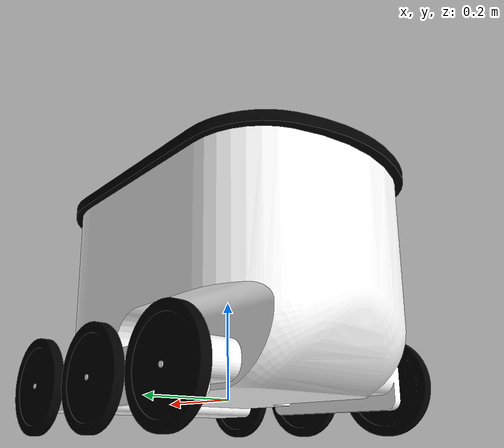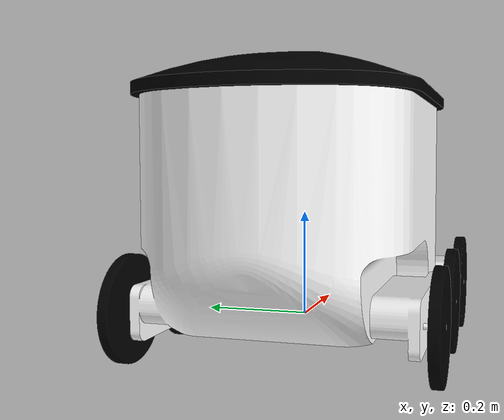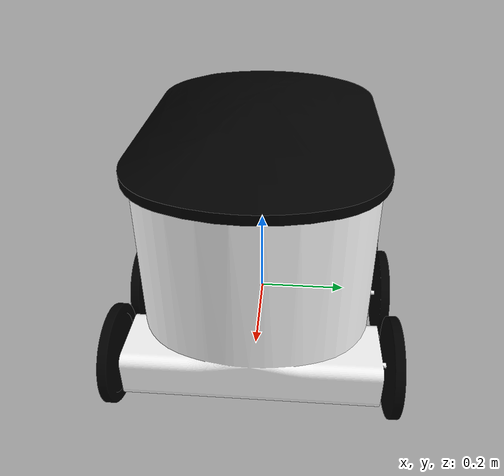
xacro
<?xml version="1.0"?>
<robot xmlns:xacro="http://www.ros.org/wiki/xacro" name="starship">

  <xacro:property name="track_width" value="0.56"/>
  <xacro:property name="wheel_z_offset" value="0.03"/>
  <xacro:property name="wheel_x_front" value="0.28"/>
  <xacro:property name="wheel_x_middle" value="0.05"/>
  <xacro:property name="wheel_x_rear" value="-0.18"/>

  <link name="base_link">
    <visual>
      <origin rpy="${pi/2} 0 ${pi}" xyz="0 0 0"/>
      <geometry>
        <mesh filename="package://starship_description/meshes/frame.STL" scale="0.001 0.001 0.001"/>
      </geometry>
      <material name="white">
        <color rgba="1 1 1 1" />
      </material>
    </visual>
    <collision>
      <geometry>
        <mesh filename="package://starship_description/meshes/frame.STL" scale="0.001 0.001 0.001"/>
      </geometry>
    </collision>
  </link>

  <link name="top">
    <visual>
      <origin rpy="1.57 0 ${pi}" xyz="0 0 0"/>
      <geometry>
        <mesh filename="package://starship_description/meshes/top.STL" scale="0.001 0.001 0.001"/>
      </geometry>
      <material name="black">
        <color rgba="0 0 0 1" />
      </material>
    </visual>
    <collision>
      <geometry>
        <mesh filename="package://starship_description/meshes/top.STL" scale="0.001 0.001 0.001"/>
      </geometry>
    </collision>
  </link>

  <xacro:macro name="wheel" params="wheel_name x reflect_y">
  <link name="${wheel_name}">
      <visual>
        <origin rpy="0 0 0" xyz="0 0 0"/>
        <geometry>
          <mesh filename="package://starship_description/meshes/wheel.STL" scale="0.001 0.001 0.001"/>
        </geometry>
        <material name="black">
          <color rgba="0 0 0 1" />
        </material>
      </visual>
      <collision>
        <geometry>
          <mesh filename="package://starship_description/meshes/wheel.STL" scale="0.001 0.001 0.001"/>
        </geometry>
      </collision>
    </link>

    <joint name="base_link_to_${wheel_name}" type="fixed">
      <parent link="base_link"/>
      <child link="${wheel_name}"/>
      <origin xyz="${x} ${track_width/2*reflect_y} ${wheel_z_offset}" rpy="-1.57 0 0"/>
    </joint>
  </xacro:macro>

  <xacro:wheel wheel_name="wheel_left_front" x="${wheel_x_front}" reflect_y="1"/>
  <xacro:wheel wheel_name="wheel_left_middle" x="${wheel_x_middle}" reflect_y="1"/>
  <xacro:wheel wheel_name="wheel_left_rear" x="${wheel_x_rear}" reflect_y="1"/>
  <xacro:wheel wheel_name="wheel_right_front" x="${wheel_x_front}" reflect_y="-1"/>
  <xacro:wheel wheel_name="wheel_right_middle" x="${wheel_x_middle}" reflect_y="-1"/>
  <xacro:wheel wheel_name="wheel_right_rear" x="${wheel_x_rear}" reflect_y="-1"/>

  <joint name="base_link_to_top" type="fixed">
    <parent link="base_link"/>
    <child link="top"/>
    <origin xyz="0 0 0" rpy="0 0 0"/>
  </joint>

</robot>
